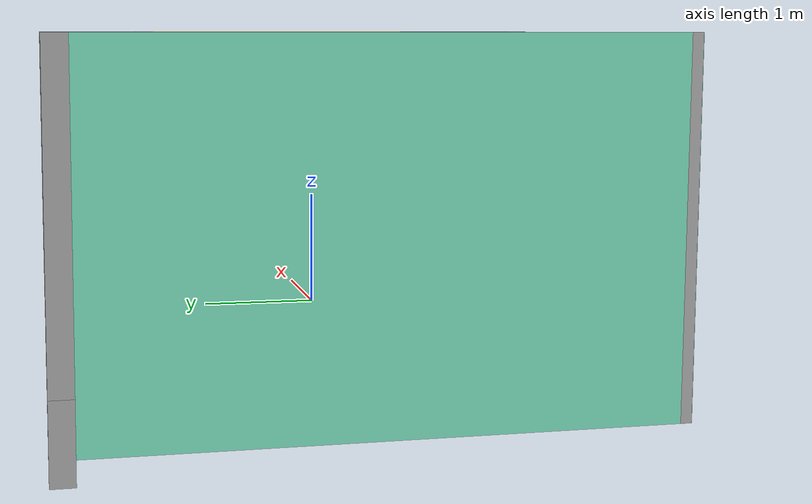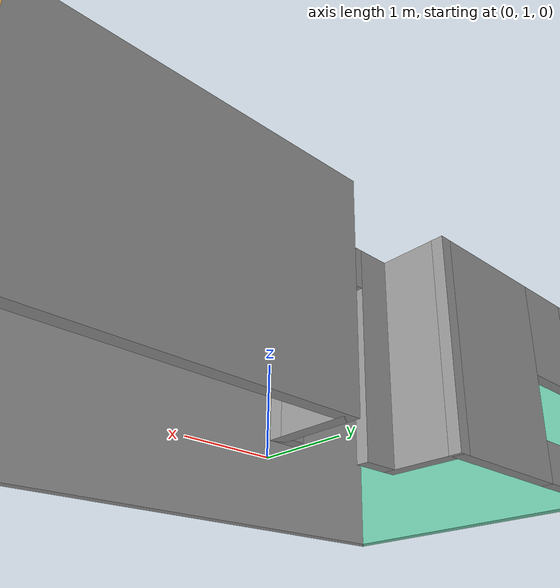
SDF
<?xml version='1.0'?>
<sdf version='1.6'>
  <model name='building'>
    <pose frame=''>-0.378016 0.198017 0 0 -0 0</pose>
    <link name='Wall_0'>
      <collision name='Wall_0_Collision'>
        <geometry>
          <box>
            <size>8.24197 0.15 2.5</size>
          </box>
        </geometry>
        <pose frame=''>0 0 1.25 0 -0 0</pose>
      </collision>
      <visual name='Wall_0_Visual'>
        <pose frame=''>0 0 1.25 0 -0 0</pose>
        <geometry>
          <box>
            <size>8.24197 0.15 2.5</size>
          </box>
        </geometry>
        <material>
          <script>
            <uri>file://media/materials/scripts/gazebo.material</uri>
            <name>Gazebo/Grey</name>
          </script>
          <ambient>1 1 1 1</ambient>
        </material>
        <meta>
          <layer>0</layer>
        </meta>
      </visual>
      <pose frame=''>0.238016 -1.95802 0 0 0 -0.054402</pose>
    </link>
    <link name='Wall_1'>
      <collision name='Wall_1_Collision'>
        <geometry>
          <box>
            <size>4.5 0.15 2.5</size>
          </box>
        </geometry>
        <pose frame=''>0 0 1.25 0 -0 0</pose>
      </collision>
      <visual name='Wall_1_Visual'>
        <pose frame=''>0 0 1.25 0 -0 0</pose>
        <geometry>
          <box>
            <size>4.5 0.15 2.5</size>
          </box>
        </geometry>
        <material>
          <script>
            <uri>file://media/materials/scripts/gazebo.material</uri>
            <name>Gazebo/Grey</name>
          </script>
          <ambient>1 0.764706 0.305882 1</ambient>
        </material>
        <meta>
          <layer>0</layer>
        </meta>
      </visual>
      <pose frame=''>4.26802 0.006983 0 0 -0 1.5708</pose>
    </link>
    <link name='Wall_12'>
      <collision name='Wall_12_Collision'>
        <geometry>
          <box>
            <size>4 0.15 2.5</size>
          </box>
        </geometry>
        <pose frame=''>0 0 1.25 0 -0 0</pose>
      </collision>
      <visual name='Wall_12_Visual'>
        <pose frame=''>0 0 1.25 0 -0 0</pose>
        <geometry>
          <box>
            <size>4 0.15 2.5</size>
          </box>
        </geometry>
        <material>
          <script>
            <uri>file://media/materials/scripts/gazebo.material</uri>
            <name>Gazebo/Grey</name>
          </script>
          <ambient>0.435294 0.796078 0.67451 1</ambient>
        </material>
        <meta>
          <layer>0</layer>
        </meta>
      </visual>
      <pose frame=''>-3.80198 0.186983 0 0 -0 1.5708</pose>
    </link>
    <link name='Wall_5'>
      <collision name='Wall_5_Collision'>
        <geometry>
          <box>
            <size>3.75 0.15 2.5</size>
          </box>
        </geometry>
        <pose frame=''>0 0 1.25 0 -0 0</pose>
      </collision>
      <visual name='Wall_5_Visual'>
        <pose frame=''>0 0 1.25 0 -0 0</pose>
        <geometry>
          <box>
            <size>3.75 0.15 2.5</size>
          </box>
        </geometry>
        <material>
          <script>
            <uri>file://media/materials/scripts/gazebo.material</uri>
            <name>Gazebo/Grey</name>
          </script>
          <ambient>1 1 1 1</ambient>
        </material>
        <meta>
          <layer>0</layer>
        </meta>
      </visual>
      <pose frame=''>2.46802 2.18198 0 0 -0 3.14159</pose>
    </link>
    <link name='Wall_6'>
      <collision name='Wall_6_Collision'>
        <geometry>
          <box>
            <size>1 0.15 2.5</size>
          </box>
        </geometry>
        <pose frame=''>0 0 1.25 0 -0 0</pose>
      </collision>
      <visual name='Wall_6_Visual'>
        <pose frame=''>0 0 1.25 0 -0 0</pose>
        <geometry>
          <box>
            <size>1 0.15 2.5</size>
          </box>
        </geometry>
        <material>
          <script>
            <uri>file://media/materials/scripts/gazebo.material</uri>
            <name>Gazebo/Grey</name>
          </script>
          <ambient>1 1 1 1</ambient>
        </material>
        <meta>
          <layer>0</layer>
        </meta>
      </visual>
      <pose frame=''>0.668016 1.75698 0 0 0 -1.5708</pose>
    </link>
    <link name='Wall_7'>
      <pose frame=''>-0.131984 1.33198 0 0 -0 3.14159</pose>
      <visual name='Wall_7_Visual_0'>
        <pose frame=''>-0.7325 0 1.25 0 -0 0</pose>
        <geometry>
          <box>
            <size>0.285 0.15 2.5</size>
          </box>
        </geometry>
        <material>
          <script>
            <uri>file://media/materials/scripts/gazebo.material</uri>
            <name>Gazebo/Grey</name>
          </script>
          <ambient>1 1 1 1</ambient>
        </material>
        <meta>
          <layer>0</layer>
        </meta>
      </visual>
      <collision name='Wall_7_Collision_0'>
        <geometry>
          <box>
            <size>0.285 0.15 2.5</size>
          </box>
        </geometry>
        <pose frame=''>-0.7325 0 1.25 0 -0 0</pose>
      </collision>
      <visual name='Wall_7_Visual_1'>
        <pose frame=''>0.5925 0 1.25 0 -0 0</pose>
        <geometry>
          <box>
            <size>0.565 0.15 2.5</size>
          </box>
        </geometry>
        <material>
          <script>
            <uri>file://media/materials/scripts/gazebo.material</uri>
            <name>Gazebo/Grey</name>
          </script>
          <ambient>1 1 1 1</ambient>
        </material>
        <meta>
          <layer>0</layer>
        </meta>
      </visual>
      <collision name='Wall_7_Collision_1'>
        <geometry>
          <box>
            <size>0.565 0.15 2.5</size>
          </box>
        </geometry>
        <pose frame=''>0.5925 0 1.25 0 -0 0</pose>
      </collision>
      <visual name='Wall_7_Visual_2'>
        <pose frame=''>-0.14 0 2.25 0 -0 0</pose>
        <geometry>
          <box>
            <size>0.9 0.15 0.5</size>
          </box>
        </geometry>
        <material>
          <script>
            <uri>file://media/materials/scripts/gazebo.material</uri>
            <name>Gazebo/Grey</name>
          </script>
          <ambient>1 1 1 1</ambient>
        </material>
        <meta>
          <layer>0</layer>
        </meta>
      </visual>
      <collision name='Wall_7_Collision_2'>
        <geometry>
          <box>
            <size>0.9 0.15 0.5</size>
          </box>
        </geometry>
        <pose frame=''>-0.14 0 2.25 0 -0 0</pose>
      </collision>
    </link>
    <link name='Wall_8'>
      <collision name='Wall_8_Collision'>
        <geometry>
          <box>
            <size>1 0.15 2.5</size>
          </box>
        </geometry>
        <pose frame=''>0 0 1.25 0 -0 0</pose>
      </collision>
      <visual name='Wall_8_Visual'>
        <pose frame=''>0 0 1.25 0 -0 0</pose>
        <geometry>
          <box>
            <size>1 0.15 2.5</size>
          </box>
        </geometry>
        <material>
          <script>
            <uri>file://media/materials/scripts/gazebo.material</uri>
            <name>Gazebo/Grey</name>
          </script>
          <ambient>1 1 1 1</ambient>
        </material>
        <meta>
          <layer>0</layer>
        </meta>
      </visual>
      <pose frame=''>-0.931984 1.75698 0 0 -0 1.5708</pose>
    </link>
    <link name='Wall_9'>
      <pose frame=''>-2.60698 2.18198 0 0 -0 3.14159</pose>
      <visual name='Wall_9_Visual_0'>
        <pose frame=''>-0.8975 0 1.25 0 -0 0</pose>
        <geometry>
          <box>
            <size>1.705 0.15 2.5</size>
          </box>
        </geometry>
        <material>
          <script>
            <uri>file://media/materials/scripts/gazebo.material</uri>
            <name>Gazebo/Grey</name>
          </script>
          <ambient>1 1 1 1</ambient>
        </material>
        <meta>
          <layer>0</layer>
        </meta>
      </visual>
      <collision name='Wall_9_Collision_0'>
        <geometry>
          <box>
            <size>1.705 0.15 2.5</size>
          </box>
        </geometry>
        <pose frame=''>-0.8975 0 1.25 0 -0 0</pose>
      </collision>
      <visual name='Wall_9_Visual_1'>
        <pose frame=''>0.8525 0 0.25 0 -0 0</pose>
        <geometry>
          <box>
            <size>1.795 0.15 0.5</size>
          </box>
        </geometry>
        <material>
          <script>
            <uri>file://media/materials/scripts/gazebo.material</uri>
            <name>Gazebo/Grey</name>
          </script>
          <ambient>1 1 1 1</ambient>
        </material>
        <meta>
          <layer>0</layer>
        </meta>
      </visual>
      <collision name='Wall_9_Collision_1'>
        <geometry>
          <box>
            <size>1.795 0.15 0.5</size>
          </box>
        </geometry>
        <pose frame=''>0.8525 0 0.25 0 -0 0</pose>
      </collision>
      <visual name='Wall_9_Visual_2'>
        <pose frame=''>1.2525 0 1.5 0 -0 0</pose>
        <geometry>
          <box>
            <size>0.995 0.15 2</size>
          </box>
        </geometry>
        <material>
          <script>
            <uri>file://media/materials/scripts/gazebo.material</uri>
            <name>Gazebo/Grey</name>
          </script>
          <ambient>1 1 1 1</ambient>
        </material>
        <meta>
          <layer>0</layer>
        </meta>
      </visual>
      <collision name='Wall_9_Collision_2'>
        <geometry>
          <box>
            <size>0.995 0.15 2</size>
          </box>
        </geometry>
        <pose frame=''>1.2525 0 1.5 0 -0 0</pose>
      </collision>
      <visual name='Wall_9_Visual_3'>
        <pose frame=''>0.355 0 1.9 0 -0 0</pose>
        <geometry>
          <box>
            <size>0.8 0.15 1.2</size>
          </box>
        </geometry>
        <material>
          <script>
            <uri>file://media/materials/scripts/gazebo.material</uri>
            <name>Gazebo/Grey</name>
          </script>
          <ambient>1 1 1 1</ambient>
        </material>
        <meta>
          <layer>0</layer>
        </meta>
      </visual>
      <collision name='Wall_9_Collision_3'>
        <geometry>
          <box>
            <size>0.8 0.15 1.2</size>
          </box>
        </geometry>
        <pose frame=''>0.355 0 1.9 0 -0 0</pose>
      </collision>
    </link>
    <static>1</static>
  </model>
</sdf>
